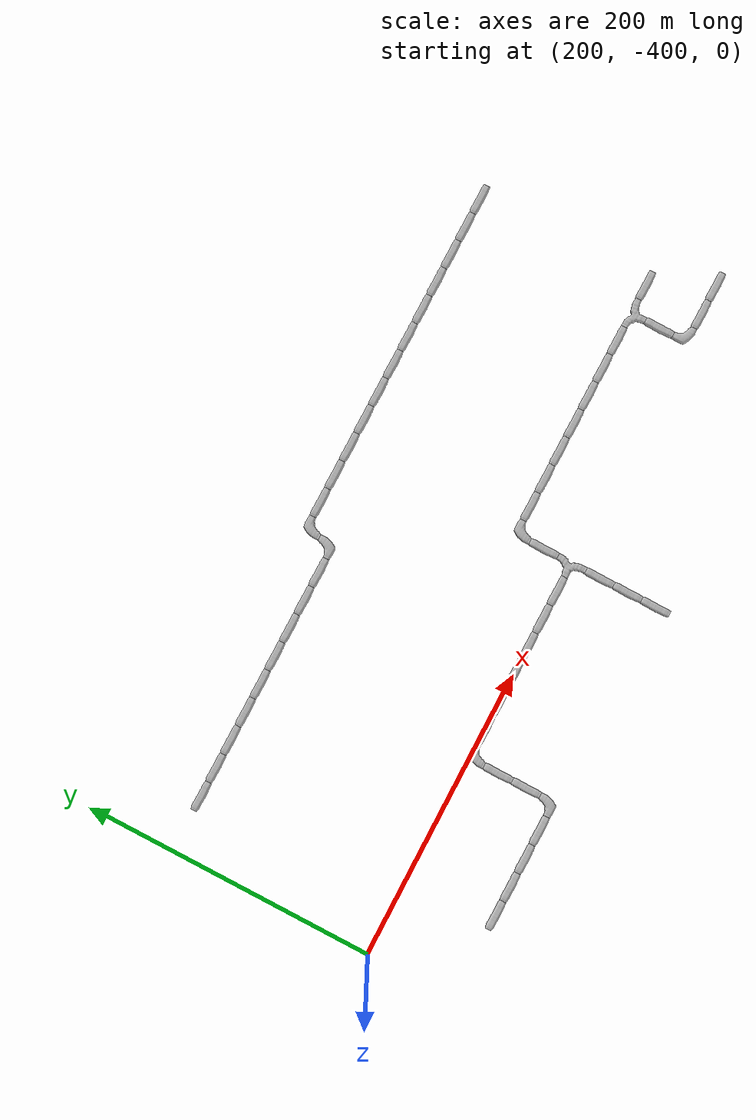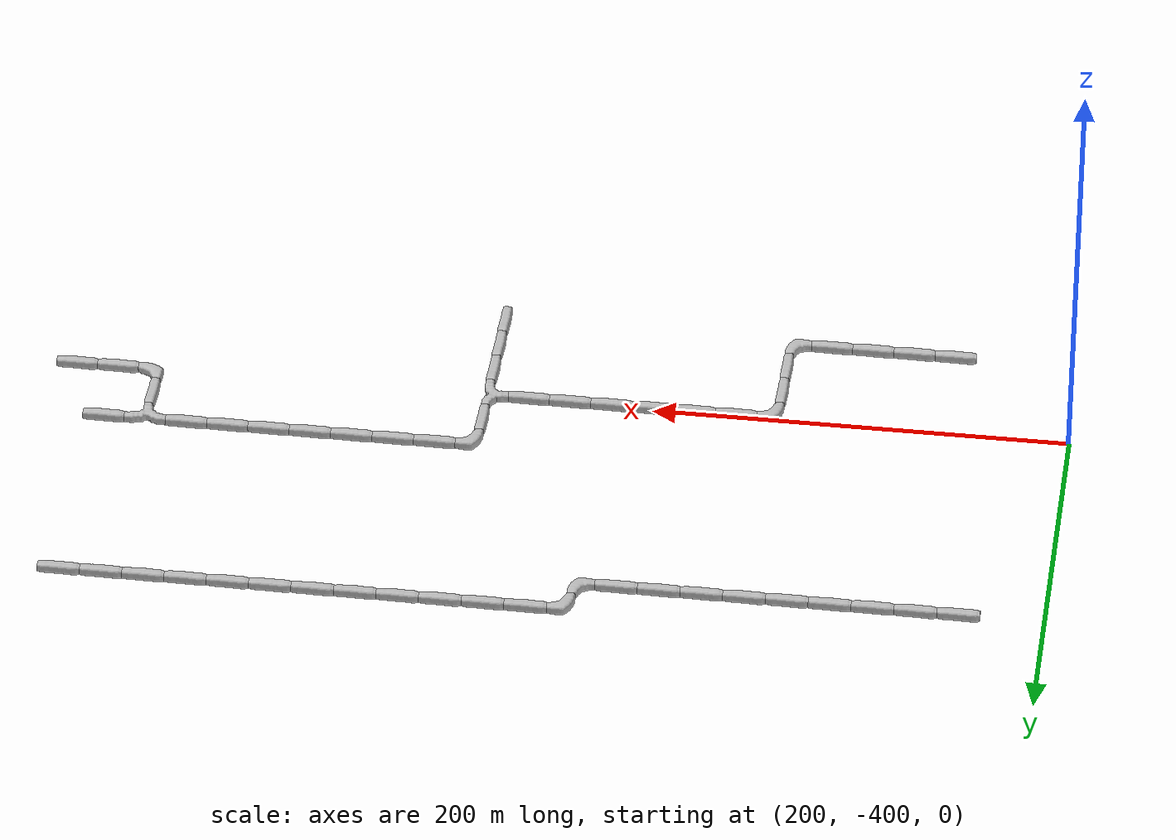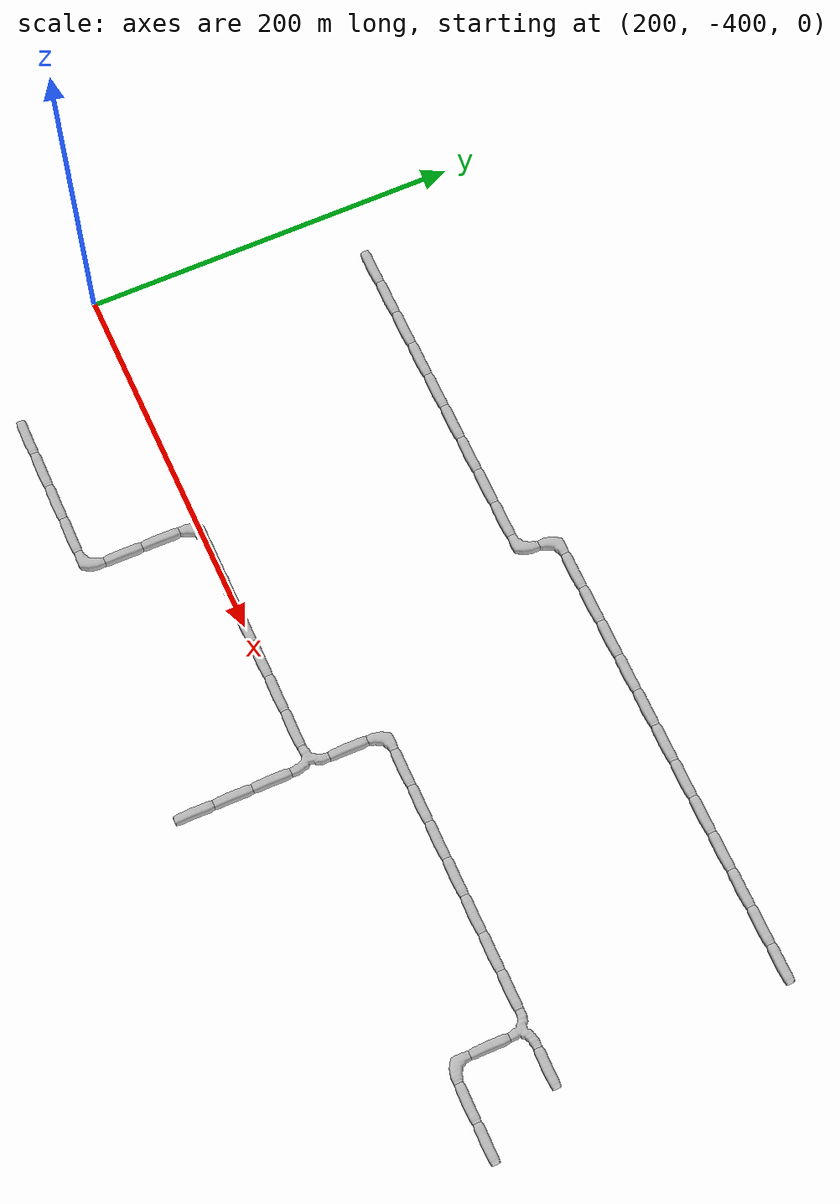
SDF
<sdf version="1.6">
 <world name="cave_32000_8">
  <include>
   <static>true</static>
   <name>cave_13_-23</name>
   <pose>260 -460 0 0 0 1.5707963267948966</pose>
   <uri>model://cave_straight_20m</uri>
  </include>
  <include>
   <static>true</static>
   <name>cave_14_-23</name>
   <pose>280 -460 0 0 0 1.5707963267948966</pose>
   <uri>model://cave_straight_20m</uri>
  </include>
  <include>
   <static>true</static>
   <name>cave_15_-23</name>
   <pose>300 -460 0 0 0 1.5707963267948966</pose>
   <uri>model://cave_straight_20m</uri>
  </include>
  <include>
   <static>true</static>
   <name>cave_16_-23</name>
   <pose>320 -460 0 0 0 1.5707963267948966</pose>
   <uri>model://cave_straight_20m</uri>
  </include>
  <include>
   <static>true</static>
   <name>cave_17_-23</name>
   <pose>340 -460 0 0 0 1.5707963267948966</pose>
   <uri>model://cave_L_20m</uri>
  </include>
  <include>
   <static>true</static>
   <name>cave_17_-22</name>
   <pose>340 -440 0 0 0 0.0</pose>
   <uri>model://cave_straight_20m</uri>
  </include>
  <include>
   <static>true</static>
   <name>cave_17_-21</name>
   <pose>340 -420 0 0 0 0.0</pose>
   <uri>model://cave_straight_20m</uri>
  </include>
  <include>
   <static>true</static>
   <name>cave_17_-20</name>
   <pose>340 -400 0 0 0 -1.5707963267948966</pose>
   <uri>model://cave_L_20m</uri>
  </include>
  <include>
   <static>true</static>
   <name>cave_18_-20</name>
   <pose>360 -400 0 0 0 1.5707963267948966</pose>
   <uri>model://cave_straight_20m</uri>
  </include>
  <include>
   <static>true</static>
   <name>cave_19_-20</name>
   <pose>380 -400 0 0 0 1.5707963267948966</pose>
   <uri>model://cave_straight_20m</uri>
  </include>
  <include>
   <static>true</static>
   <name>cave_20_-20</name>
   <pose>400 -400 0 0 0 1.5707963267948966</pose>
   <uri>model://cave_straight_20m</uri>
  </include>
  <include>
   <static>true</static>
   <name>cave_21_-20</name>
   <pose>420 -400 0 0 0 1.5707963267948966</pose>
   <uri>model://cave_straight_20m</uri>
  </include>
  <include>
   <static>true</static>
   <name>cave_22_-20</name>
   <pose>440 -400 0 0 0 1.5707963267948966</pose>
   <uri>model://cave_straight_20m</uri>
  </include>
  <include>
   <static>true</static>
   <name>cave_23_-20</name>
   <pose>460 -400 0 0 0 1.5707963267948966</pose>
   <uri>model://cave_straight_20m</uri>
  </include>
  <include>
   <static>true</static>
   <name>cave_24_-20</name>
   <pose>480 -400 0 0 0 1.5707963267948966</pose>
   <uri>model://cave_3way_20m</uri>
  </include>
  <include>
   <static>true</static>
   <name>cave_24_-21</name>
   <pose>480 -420 0 0 0 0.0</pose>
   <uri>model://cave_straight_20m</uri>
  </include>
  <include>
   <static>true</static>
   <name>cave_24_-22</name>
   <pose>480 -440 0 0 0 0.0</pose>
   <uri>model://cave_straight_20m</uri>
  </include>
  <include>
   <static>true</static>
   <name>cave_24_-23</name>
   <pose>480 -460 0 0 0 0.0</pose>
   <uri>model://cave_straight_20m</uri>
  </include>
  <include>
   <static>true</static>
   <name>cave_24_-19</name>
   <pose>480 -380 0 0 0 0.0</pose>
   <uri>model://cave_straight_20m</uri>
  </include>
  <include>
   <static>true</static>
   <name>cave_24_-18</name>
   <pose>480 -360 0 0 0 -1.5707963267948966</pose>
   <uri>model://cave_L_20m</uri>
  </include>
  <include>
   <static>true</static>
   <name>cave_25_-18</name>
   <pose>500 -360 0 0 0 1.5707963267948966</pose>
   <uri>model://cave_straight_20m</uri>
  </include>
  <include>
   <static>true</static>
   <name>cave_26_-18</name>
   <pose>520 -360 0 0 0 1.5707963267948966</pose>
   <uri>model://cave_straight_20m</uri>
  </include>
  <include>
   <static>true</static>
   <name>cave_27_-18</name>
   <pose>540 -360 0 0 0 1.5707963267948966</pose>
   <uri>model://cave_straight_20m</uri>
  </include>
  <include>
   <static>true</static>
   <name>cave_28_-18</name>
   <pose>560 -360 0 0 0 1.5707963267948966</pose>
   <uri>model://cave_straight_20m</uri>
  </include>
  <include>
   <static>true</static>
   <name>cave_29_-18</name>
   <pose>580 -360 0 0 0 1.5707963267948966</pose>
   <uri>model://cave_straight_20m</uri>
  </include>
  <include>
   <static>true</static>
   <name>cave_30_-18</name>
   <pose>600 -360 0 0 0 1.5707963267948966</pose>
   <uri>model://cave_straight_20m</uri>
  </include>
  <include>
   <static>true</static>
   <name>cave_31_-18</name>
   <pose>620 -360 0 0 0 1.5707963267948966</pose>
   <uri>model://cave_straight_20m</uri>
  </include>
  <include>
   <static>true</static>
   <name>cave_32_-18</name>
   <pose>640 -360 0 0 0 3.141592653589793</pose>
   <uri>model://cave_3way_20m</uri>
  </include>
  <include>
   <static>true</static>
   <name>cave_33_-18</name>
   <pose>660 -360 0 0 0 1.5707963267948966</pose>
   <uri>model://cave_straight_20m</uri>
  </include>
  <include>
   <static>true</static>
   <name>cave_33_-12</name>
   <pose>660 -240 0 0 0 1.5707963267948966</pose>
   <uri>model://cave_straight_20m</uri>
  </include>
  <include>
   <static>true</static>
   <name>cave_32_-12</name>
   <pose>640 -240 0 0 0 1.5707963267948966</pose>
   <uri>model://cave_straight_20m</uri>
  </include>
  <include>
   <static>true</static>
   <name>cave_31_-12</name>
   <pose>620 -240 0 0 0 1.5707963267948966</pose>
   <uri>model://cave_straight_20m</uri>
  </include>
  <include>
   <static>true</static>
   <name>cave_30_-12</name>
   <pose>600 -240 0 0 0 1.5707963267948966</pose>
   <uri>model://cave_straight_20m</uri>
  </include>
  <include>
   <static>true</static>
   <name>cave_29_-12</name>
   <pose>580 -240 0 0 0 1.5707963267948966</pose>
   <uri>model://cave_straight_20m</uri>
  </include>
  <include>
   <static>true</static>
   <name>cave_28_-12</name>
   <pose>560 -240 0 0 0 1.5707963267948966</pose>
   <uri>model://cave_straight_20m</uri>
  </include>
  <include>
   <static>true</static>
   <name>cave_27_-12</name>
   <pose>540 -240 0 0 0 1.5707963267948966</pose>
   <uri>model://cave_straight_20m</uri>
  </include>
  <include>
   <static>true</static>
   <name>cave_26_-12</name>
   <pose>520 -240 0 0 0 1.5707963267948966</pose>
   <uri>model://cave_straight_20m</uri>
  </include>
  <include>
   <static>true</static>
   <name>cave_25_-12</name>
   <pose>500 -240 0 0 0 1.5707963267948966</pose>
   <uri>model://cave_straight_20m</uri>
  </include>
  <include>
   <static>true</static>
   <name>cave_24_-12</name>
   <pose>480 -240 0 0 0 1.5707963267948966</pose>
   <uri>model://cave_straight_20m</uri>
  </include>
  <include>
   <static>true</static>
   <name>cave_23_-12</name>
   <pose>460 -240 0 0 0 1.5707963267948966</pose>
   <uri>model://cave_straight_20m</uri>
  </include>
  <include>
   <static>true</static>
   <name>cave_22_-12</name>
   <pose>440 -240 0 0 0 1.5707963267948966</pose>
   <uri>model://cave_straight_20m</uri>
  </include>
  <include>
   <static>true</static>
   <name>cave_21_-12</name>
   <pose>420 -240 0 0 0 -1.5707963267948966</pose>
   <uri>model://cave_L_20m</uri>
  </include>
  <include>
   <static>true</static>
   <name>cave_21_-13</name>
   <pose>420 -260 0 0 0 1.5707963267948966</pose>
   <uri>model://cave_L_20m</uri>
  </include>
  <include>
   <static>true</static>
   <name>cave_20_-13</name>
   <pose>400 -260 0 0 0 1.5707963267948966</pose>
   <uri>model://cave_straight_20m</uri>
  </include>
  <include>
   <static>true</static>
   <name>cave_19_-13</name>
   <pose>380 -260 0 0 0 1.5707963267948966</pose>
   <uri>model://cave_straight_20m</uri>
  </include>
  <include>
   <static>true</static>
   <name>cave_18_-13</name>
   <pose>360 -260 0 0 0 1.5707963267948966</pose>
   <uri>model://cave_straight_20m</uri>
  </include>
  <include>
   <static>true</static>
   <name>cave_17_-13</name>
   <pose>340 -260 0 0 0 1.5707963267948966</pose>
   <uri>model://cave_straight_20m</uri>
  </include>
  <include>
   <static>true</static>
   <name>cave_16_-13</name>
   <pose>320 -260 0 0 0 1.5707963267948966</pose>
   <uri>model://cave_straight_20m</uri>
  </include>
  <include>
   <static>true</static>
   <name>cave_15_-13</name>
   <pose>300 -260 0 0 0 1.5707963267948966</pose>
   <uri>model://cave_straight_20m</uri>
  </include>
  <include>
   <static>true</static>
   <name>cave_14_-13</name>
   <pose>280 -260 0 0 0 1.5707963267948966</pose>
   <uri>model://cave_straight_20m</uri>
  </include>
  <include>
   <static>true</static>
   <name>cave_13_-13</name>
   <pose>260 -260 0 0 0 1.5707963267948966</pose>
   <uri>model://cave_straight_20m</uri>
  </include>
  <include>
   <static>true</static>
   <name>cave_12_-13</name>
   <pose>240 -260 0 0 0 1.5707963267948966</pose>
   <uri>model://cave_straight_20m</uri>
  </include>
  <include>
   <static>true</static>
   <name>cave_32_-19</name>
   <pose>640 -380 0 0 0 0.0</pose>
   <uri>model://cave_straight_20m</uri>
  </include>
  <include>
   <static>true</static>
   <name>cave_32_-20</name>
   <pose>640 -400 0 0 0 0.0</pose>
   <uri>model://cave_L_20m</uri>
  </include>
  <include>
   <static>true</static>
   <name>cave_33_-20</name>
   <pose>660 -400 0 0 0 1.5707963267948966</pose>
   <uri>model://cave_straight_20m</uri>
  </include>
  <include>
   <static>true</static>
   <name>cave_34_-20</name>
   <pose>680 -400 0 0 0 1.5707963267948966</pose>
   <uri>model://cave_straight_20m</uri>
  </include>
 </world>
</sdf>
